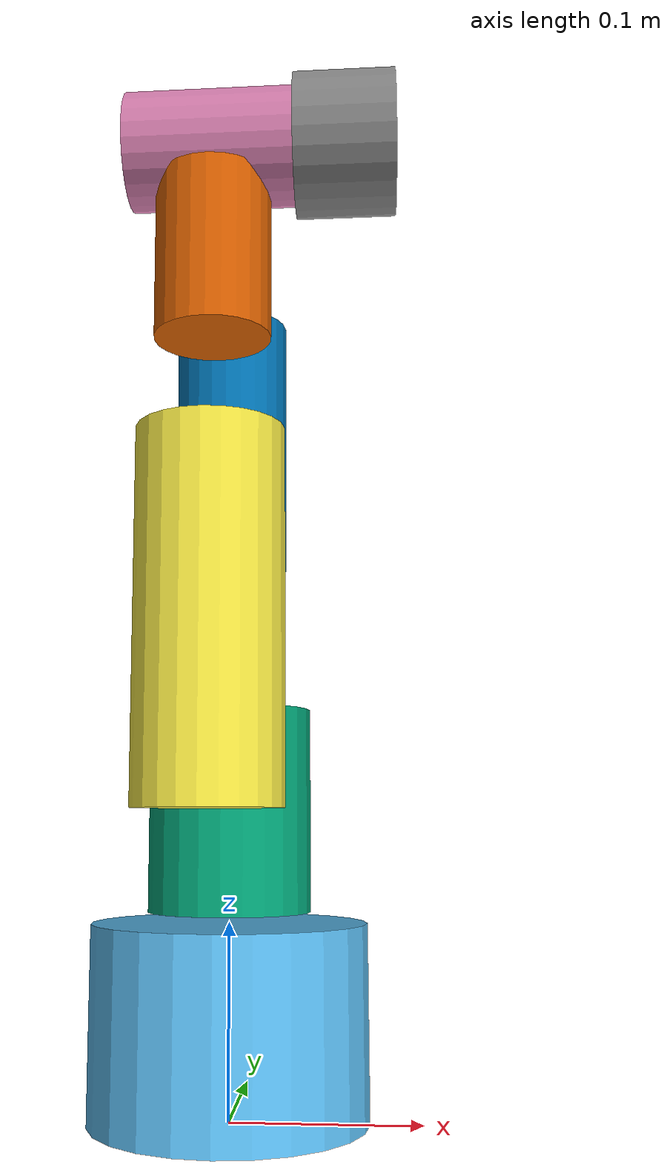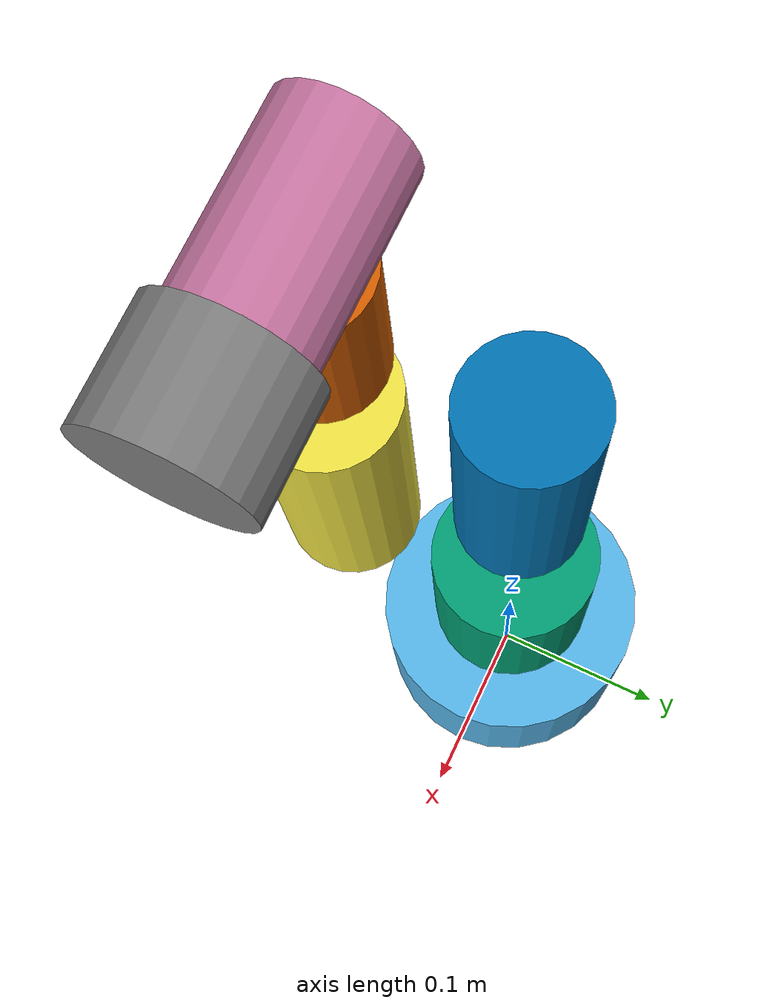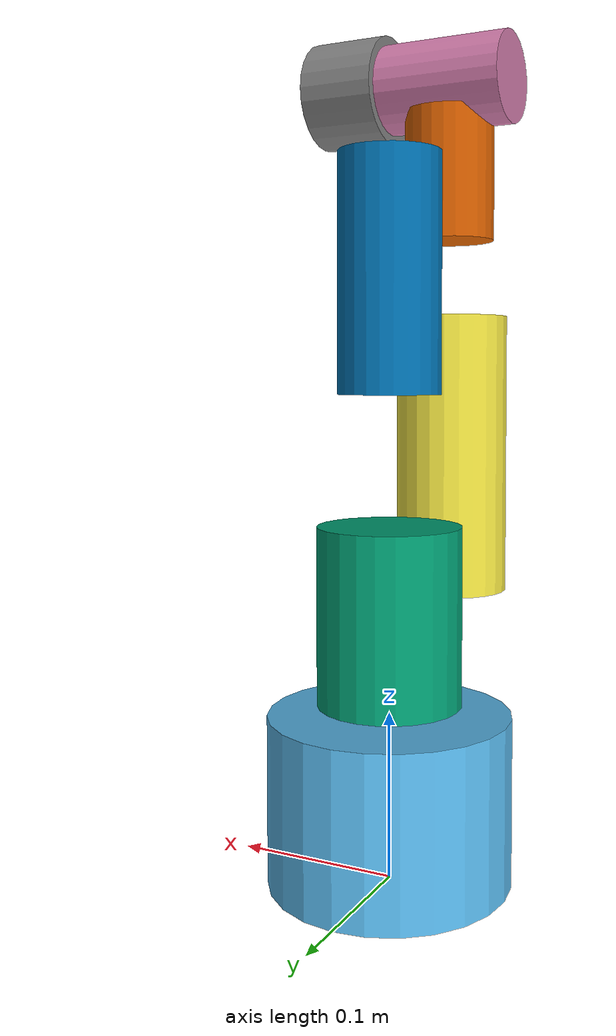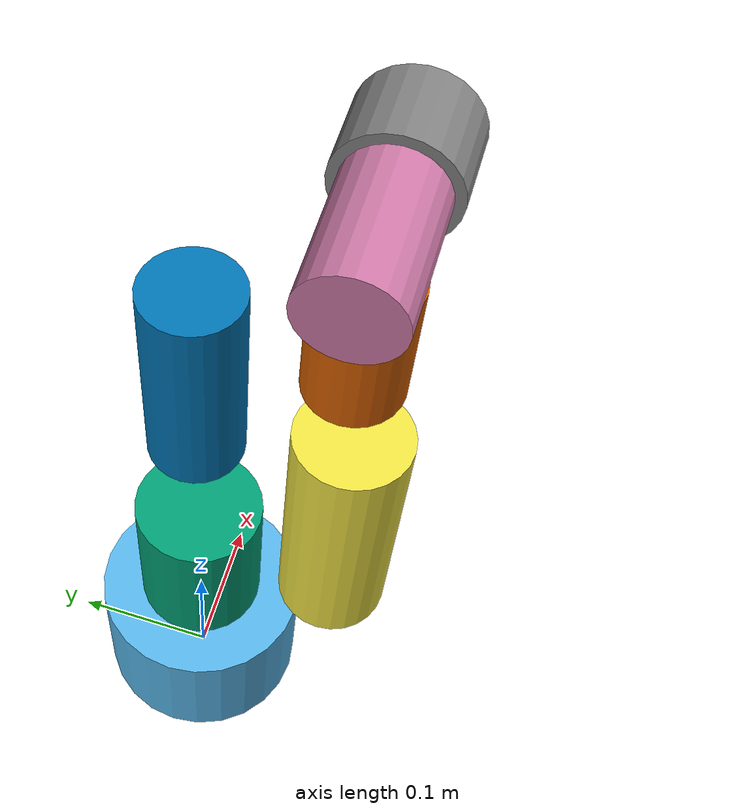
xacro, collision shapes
<?xml version="1.0"?>
<robot xmlns:xacro="http://www.ros.org/wiki/xacro" name="mycobot_320_moveit">

    <link name="world" />
    <joint name="world2base" type="fixed">
        <parent link="world" />
        <child link="base_link" />
    </joint>
    <link name="base_link">
        <visual>
            <geometry>
                <mesh filename="package://mycobot_320_moveit/urdf/320_urdf/base.dae" />
            </geometry>
            <origin xyz="0 0 0 " rpy=" 0 0 3.1415926" />
        </visual>
        <collision>
            <origin xyz="0 0 0.05 " rpy=" 0 0 3.1415926" />
            <geometry>
                <cylinder length="0.100" radius="0.0725" />
            </geometry>
        </collision>
        <inertial>
            <mass value="1.0" />
            <inertia ixx="0.00218" iyy="0.00218" izz="0.00263" ixy="0.0" ixz="0.0" iyz="0.0" />

        </inertial>
    </link>
    <link name="link1">
        <visual>
            <geometry>
                <mesh filename="package://mycobot_320_moveit/urdf/320_urdf/link1_1.dae" />
            </geometry>
            <origin xyz="0 0 0 " rpy=" 0 0 0" />
        </visual>
        <collision>
            <origin xyz="0 0 -0.02 " rpy=" 0 0 0" />
            <geometry>
                <cylinder length="0.106" radius="0.043" />
            </geometry>
        </collision>
        <inertial>
            <mass value="0.5" />
            <inertia ixx="0.00070" iyy="0.00070" izz="0.00046" ixy="0.0" ixz="0.0" iyz="0.0" />

        </inertial>
    </link>
    <link name="link2">
        <visual>
            <geometry>
                <mesh filename="package://mycobot_320_moveit/urdf/320_urdf/link2.dae" />
            </geometry>
            <origin xyz="0 0 0.0587 " rpy=" 0 0 3.1415926" />
        </visual>
        <collision>
            <origin xyz="0.07 0 0.095 " rpy="0 -1.5708 0" />
            <geometry>
                <cylinder length="0.18" radius="0.036" />
            </geometry>
        </collision>
        <inertial>
            <mass value="0.7" />
            <inertia ixx="0.00212" iyy="0.00212" izz="0.00045" ixy="0.0" ixz="0.0" iyz="0.0" />
        </inertial>
    </link>
    <link name="link3">
        <visual>
            <geometry>
                <mesh filename="package://mycobot_320_moveit/urdf/320_urdf/link3.dae" />
            </geometry>
            <origin xyz="0 0 0.038 " rpy=" 0 0 3.1415926" />
        </visual>
        <collision>
            <origin xyz="0.044 0 0 " rpy=" 0 -1.5708 0" />
            <geometry>
                <cylinder length="0.14" radius="0.0305" />
            </geometry>
        </collision>
        <inertial>
            <mass value="0.5" />
            <inertia ixx="0.00093" iyy="0.00093" izz="0.00023" ixy="0.0" ixz="0.0" iyz="0.0" />

        </inertial>
    </link>
    <link name="link4">
        <visual>
            <geometry>
                <mesh filename="package://mycobot_320_moveit/urdf/320_urdf/link4.dae" />
            </geometry>
            <origin xyz="0 -0.001 0 " rpy=" 0 0 0" />
        </visual>
        <collision>
            <origin xyz="0.0 -0.014 0 " rpy=" 0 -1.5708 1.5708" />
            <geometry>
                <cylinder length="0.083" radius="0.029" />
            </geometry>
        </collision>
        <inertial>
            <mass value="0.2" />
            <inertia ixx="0.00016" iyy="0.00016" izz="0.00008" ixy="0.0" ixz="0.0" iyz="0.0" />

        </inertial>
    </link>
    <link name="link5">
        <visual>
            <geometry>
                <mesh filename="package://mycobot_320_moveit/urdf/320_urdf/link5.dae" />
            </geometry>
            <origin xyz="0 0.002  0 " rpy=" 0  0 3.1415926" />
        </visual>
        <collision>
            <origin xyz="0 0.0 0 " rpy=" 1.5708 1.5708 0" />
            <geometry>
                <cylinder length="0.0849" radius="0.029" />
            </geometry>
        </collision>
        <inertial>
            <mass value="0.2" />
            <inertia ixx="0.00016" iyy="0.00016" izz="0.00008" ixy="0.0" ixz="0.0" iyz="0.0" />

        </inertial>
    </link>
    <link name="link6">
        <visual>
            <geometry>
                <mesh filename="package://mycobot_320_moveit/urdf/320_urdf/link6.dae" />
            </geometry>
            <material name="grey">
                <color rgba="0.5 0.5 0.5 1" />
            </material>
            <origin xyz="-0.502 -0.090 -0.096 " rpy=" 0 1.5708 0" />
        </visual>
        <collision>
            <origin xyz="0.0 0 -0.01 " rpy=" 0 0 0" />
            <geometry>
                <cylinder length="0.0225" radius="0.029" />
            </geometry>
        </collision>
        <inertial>
            <mass value="0.2" />
            <inertia ixx="0.00002" iyy="0.00002" izz="0.00003" ixy="0.0" ixz="0.0" iyz="0.0" />

        </inertial>
    </link>
    <link name="hand_collision">
        <visual>
            <geometry>
                <cylinder length="0.05" radius="0.035" />
            </geometry>
            <material name="grey">
                <color rgba="0.5 0.5 0.5 1" />
            </material>
            <origin xyz="-0.0 -0.0 -0.0 " rpy=" 0 0 0" />
        </visual>
        <collision>
            <origin xyz="0.0 0 -0.0 " rpy=" 0 0 0" />
            <geometry>
                <cylinder length="0.05" radius="0.035" />
            </geometry>
        </collision>
        <inertial>
            <mass value="0.2" />
            <inertia ixx="0.00002" iyy="0.00002" izz="0.00003" ixy="0.0" ixz="0.0" iyz="0.0" />
        </inertial>
    </link>
    <joint name="arm_joint_0" type="revolute">
        <axis xyz="0 0 1" />
        <limit effort="100.0" lower="-2.96706" upper="2.96706" velocity="5" />
        <parent link="base_link" />
        <child link="link1" />
        <origin xyz="0 0 0.17846" rpy="0 0 0" />
    </joint>
    <joint name="arm_joint_1" type="revolute">
        <axis xyz="0 0 1" />
        <limit effort="100.0" lower="-2.7925268" upper="2.7925268" velocity="5" />
        <parent link="link1" />
        <child link="link2" />
        <origin xyz="0 0 0" rpy="0 -1.5708 1.5708" />
    </joint>
    <joint name="arm_joint_2" type="revolute">
        <axis xyz=" 0 0 1" />
        <limit effort="100.0" lower="-2.7925268" upper="2.7925268" velocity="5" />
        <parent link="link2" />
        <child link="link3" />
        <origin xyz="0.13635 0 0   " rpy="0 0 0" />
    </joint>
    <joint name="arm_joint_3" type="revolute">
        <axis xyz=" 0 0 1" />
        <limit effort="100.0" lower="-2.7925268" upper="2.7925268" velocity="5" />
        <parent link="link3" />
        <child link="link4" />
        <origin xyz="0.1 0 0.09 " rpy=" 0 0 1.57080" />
    </joint>
    <joint name="arm_joint_4" type="revolute">
        <axis xyz="0 0 1" />
        <limit effort="100.0" lower="-2.96706" upper="2.96706" velocity="5" />
        <parent link="link4" />
        <child link="link5" />
        <origin xyz="0 -0.07318 0" rpy="1.5708 -1.5708 0" />
    </joint>
    <joint name="arm_joint_5" type="revolute">
        <axis xyz="0 0 1" />
        <limit effort="100.0" lower="-3.054326" upper="3.054326" velocity="5" />
        <parent link="link5" />
        <child link="link6" />
        <origin xyz="0.00 0.06635 0" rpy="-1.5708 0 0" />
    </joint>

    <joint name="link6_to_hand" type="fixed">
        <parent link="link6" />
        <child link="hand_collision" />
        <origin xyz="-0.0 -0.00 0.00" rpy="0 0 0" />
    </joint>

    <joint name="link6_to_magsensor" type="fixed">
        <parent link="link6" />
        <child link="magsensor" />
        <origin xyz="-0.0 -0.00 -0.006" rpy="0 0 0" />
    </joint>

    <link name="magsensor">
        <visual>
            <geometry>
                <box size="0.01 0.01 0.002" />
            </geometry>
            <material name="green">
                <color rgba="0 1 0  1" />
            </material>
            <origin xyz="0 0 0 " rpy=" 0 0 0" />
        </visual>
        <collision>
            <origin xyz="0.0 0 0.0 " rpy=" 0 0 0" />
            <geometry>
                <box size="0.01 0.002 0.01" />
            </geometry>
        </collision>
        <inertial>
            <mass value="0.2" />
            <inertia ixx="0.00002" iyy="0.00002" izz="0.00003" ixy="0.0" ixz="0.0" iyz="0.0" />

        </inertial>
    </link>

    <xacro:macro name="transmission_macro" params="part index">
        <transmission name="${part}_tran_${index}">
            <type>transmission_interface/SimpleTransmission</type>
            <joint name="${part}_joint_${index}">
                <hardwareInterface>hardware_interface/PositionJointInterface</hardwareInterface>
            </joint>
            <actuator name="${part}_motor_${index}">
                <hardwareInterface>PositionJointInterface</hardwareInterface>
                <mechanicalReduction>1</mechanicalReduction>
            </actuator>
        </transmission>
    </xacro:macro>

    <xacro:transmission_macro index="0" part="arm" />
    <xacro:transmission_macro index="1" part="arm" />
    <xacro:transmission_macro index="2" part="arm" />
    <xacro:transmission_macro index="3" part="arm" />
    <xacro:transmission_macro index="4" part="arm" />
    <xacro:transmission_macro index="5" part="arm" />
    <!--ros_control
  plugin-->
    <gazebo>
        <plugin name="gazebo_ros_control" filename="libgazebo_ros_control.so" />
    </gazebo>
    <!--joint_state_publisher
  plugin-->
    <gazebo>
        <plugin name="joint_state_publisher" filename="libgazebo_ros_joint_state_publisher.so">
            <jointName>arm_joint_0, arm_joint_1, arm_joint_2, arm_joint_3, arm_joint_4, arm_joint_5 </jointName>
        </plugin>
    </gazebo>
</robot>
